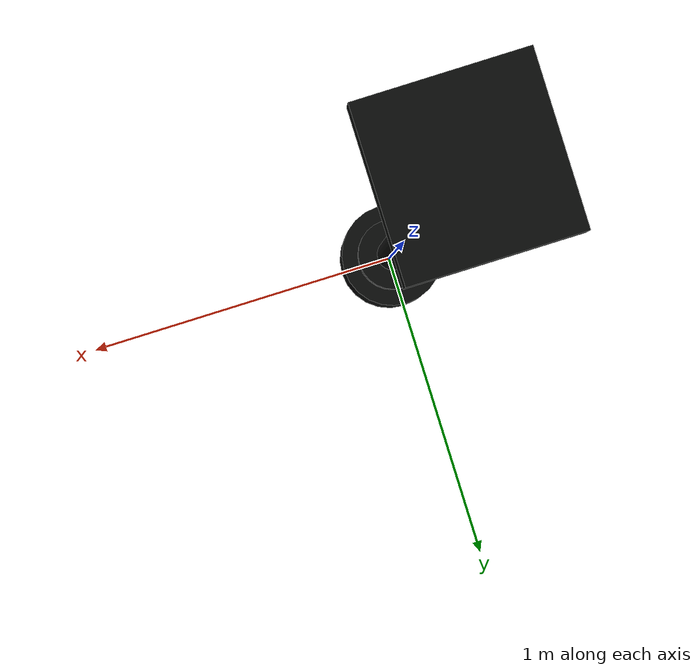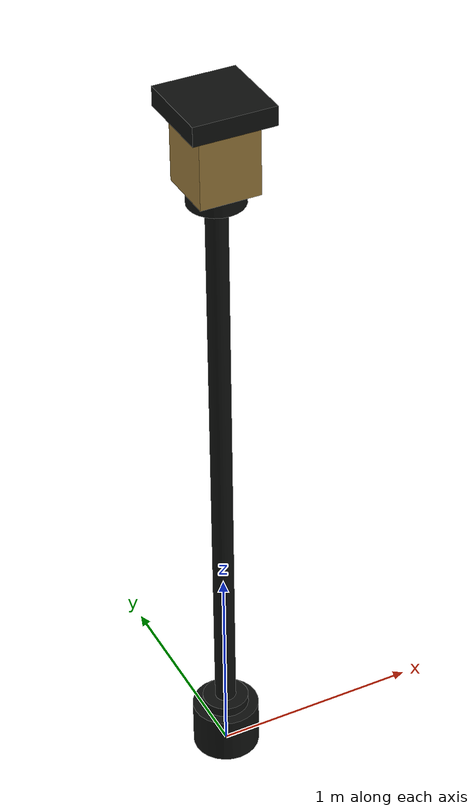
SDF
<?xml version="1.0"?>
<sdf version="1.9">
  <model name="surf_lamp_post">
    <static>true</static>
    <link name="lamp_post">
      <collision name="base_collision">
        <pose>0 0 0.12 0 0 0</pose>
        <geometry><cylinder><radius>0.16</radius><length>0.24</length></cylinder></geometry>
      </collision>
      <collision name="post_collision">
        <pose>0 0 1.65 0 0 0</pose>
        <geometry><cylinder><radius>0.055</radius><length>3.10</length></cylinder></geometry>
      </collision>
      <collision name="lantern_collision">
        <pose>0 0 3.31 0 0 0</pose>
        <geometry><box><size>0.34 0.34 0.42</size></box></geometry>
      </collision>

      <visual name="base_visual">
        <pose>0 0 0.12 0 0 0</pose>
        <geometry><cylinder><radius>0.16</radius><length>0.24</length></cylinder></geometry>
        <material>
          <ambient>0.025 0.028 0.026 1</ambient>
          <diffuse>0.055 0.060 0.055 1</diffuse>
          <specular>0.30 0.30 0.28 1</specular>
        </material>
      </visual>
      <visual name="base_cap_visual">
        <pose>0 0 0.25 0 0 0</pose>
        <geometry><cylinder><radius>0.11</radius><length>0.08</length></cylinder></geometry>
        <material>
          <ambient>0.025 0.028 0.026 1</ambient>
          <diffuse>0.055 0.060 0.055 1</diffuse>
          <specular>0.30 0.30 0.28 1</specular>
        </material>
      </visual>
      <visual name="post_visual">
        <pose>0 0 1.65 0 0 0</pose>
        <geometry><cylinder><radius>0.050</radius><length>3.10</length></cylinder></geometry>
        <material>
          <ambient>0.025 0.028 0.026 1</ambient>
          <diffuse>0.055 0.060 0.055 1</diffuse>
          <specular>0.30 0.30 0.28 1</specular>
        </material>
      </visual>
      <visual name="lower_finial_visual">
        <pose>0 0 3.11 0 0 0</pose>
        <geometry><cylinder><radius>0.13</radius><length>0.08</length></cylinder></geometry>
        <material>
          <ambient>0.025 0.028 0.026 1</ambient>
          <diffuse>0.055 0.060 0.055 1</diffuse>
          <specular>0.30 0.30 0.28 1</specular>
        </material>
      </visual>
      <visual name="lantern_glass_visual">
        <pose>0 0 3.31 0 0 0</pose>
        <geometry><box><size>0.28 0.28 0.34</size></box></geometry>
        <material>
          <ambient>0.30 0.24 0.12 1</ambient>
          <diffuse>0.58 0.46 0.22 1</diffuse>
          <specular>0.35 0.32 0.22 1</specular>
          <emissive>0.62 0.48 0.20 1</emissive>
        </material>
      </visual>
      <visual name="lantern_cap_visual">
        <pose>0 0 3.52 0 0 0</pose>
        <geometry><box><size>0.38 0.38 0.09</size></box></geometry>
        <material>
          <ambient>0.025 0.028 0.026 1</ambient>
          <diffuse>0.055 0.060 0.055 1</diffuse>
          <specular>0.30 0.30 0.28 1</specular>
        </material>
      </visual>

      <light name="warm_path_light" type="point">
        <pose>0 0 3.30 0 0 0</pose>
        <cast_shadows>true</cast_shadows>
        <diffuse>0.72 0.58 0.34 1</diffuse>
        <specular>0.16 0.13 0.08 1</specular>
        <attenuation>
          <range>8.0</range>
          <constant>0.70</constant>
          <linear>0.12</linear>
          <quadratic>0.025</quadratic>
        </attenuation>
      </light>
    </link>
  </model>
</sdf>
